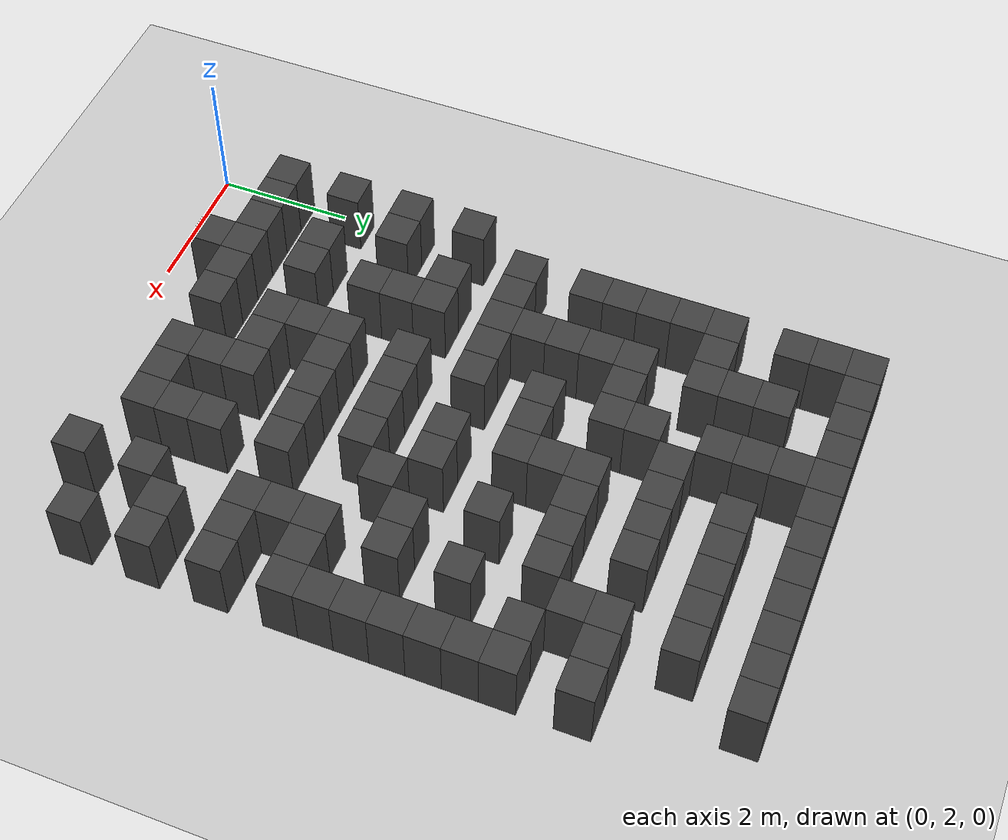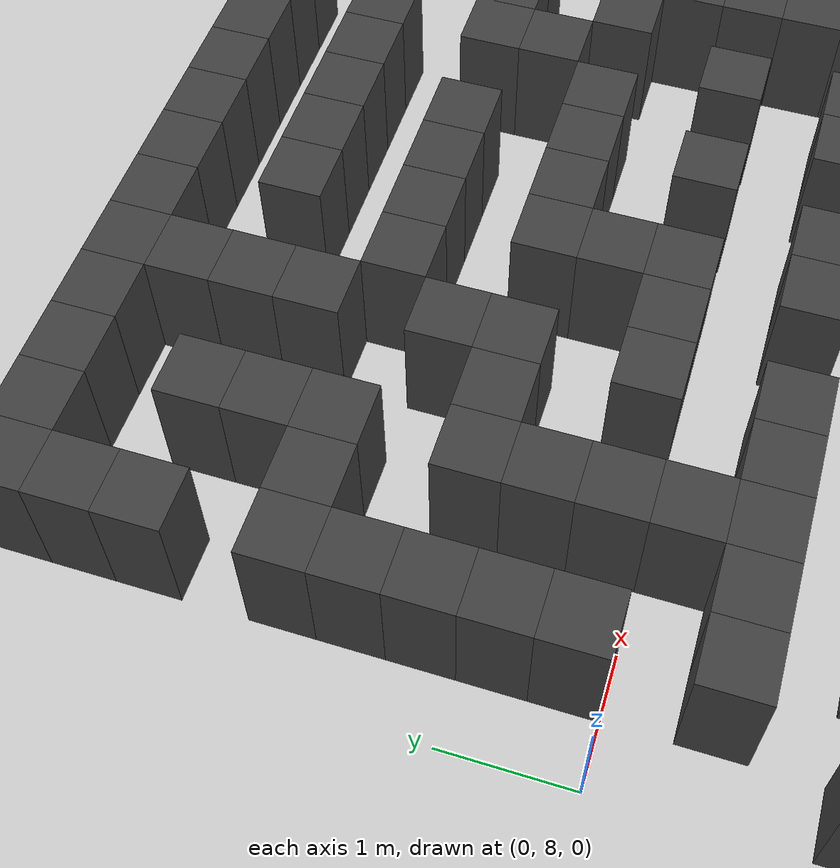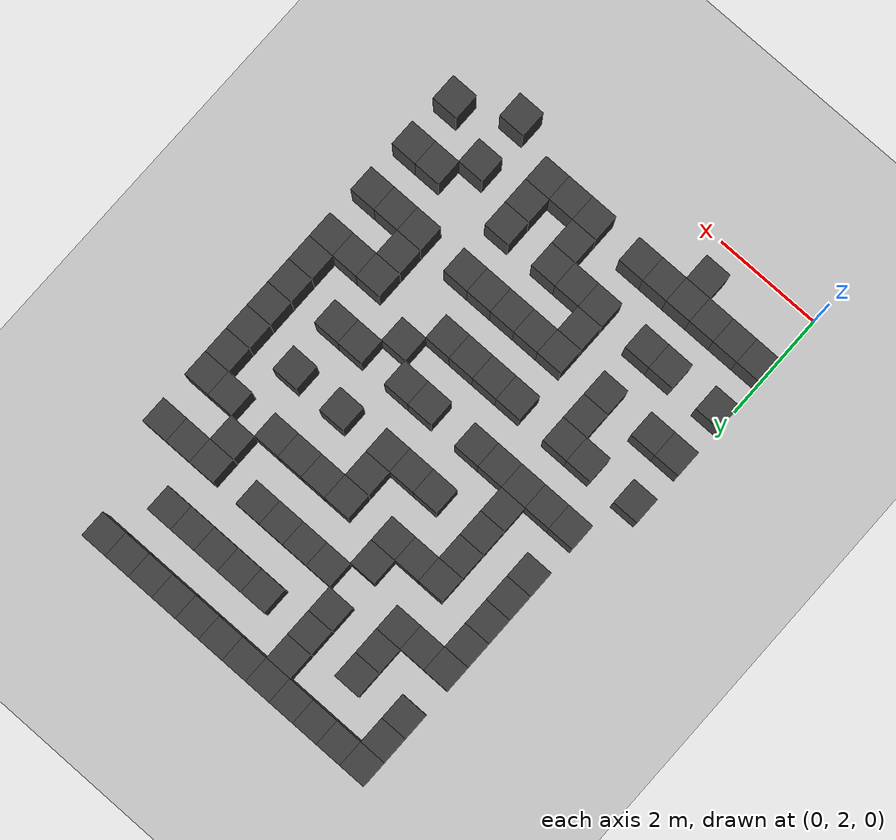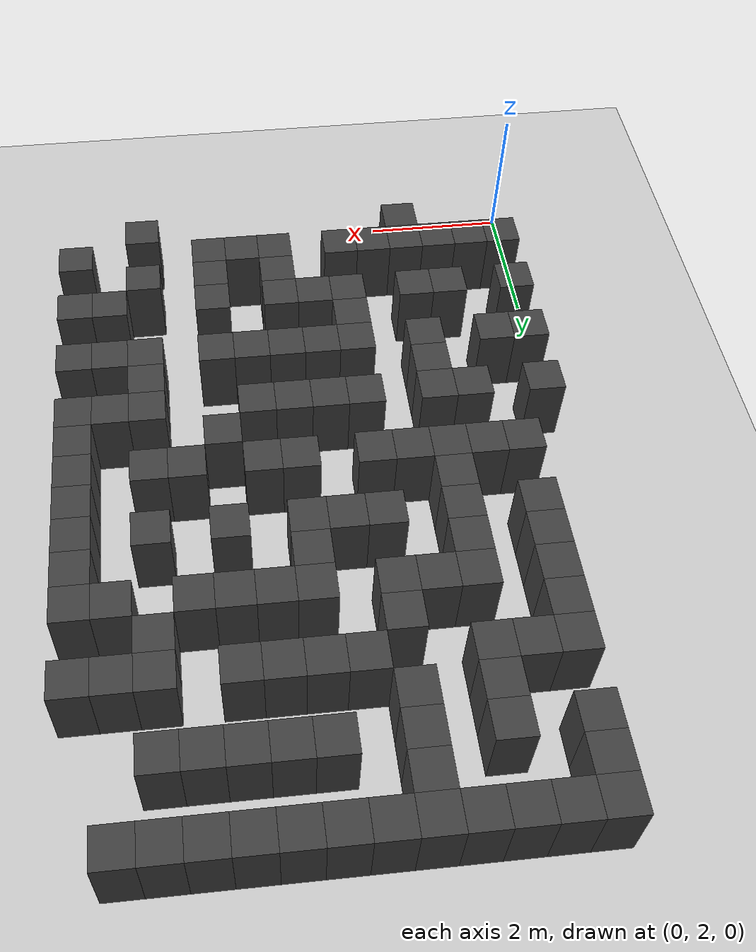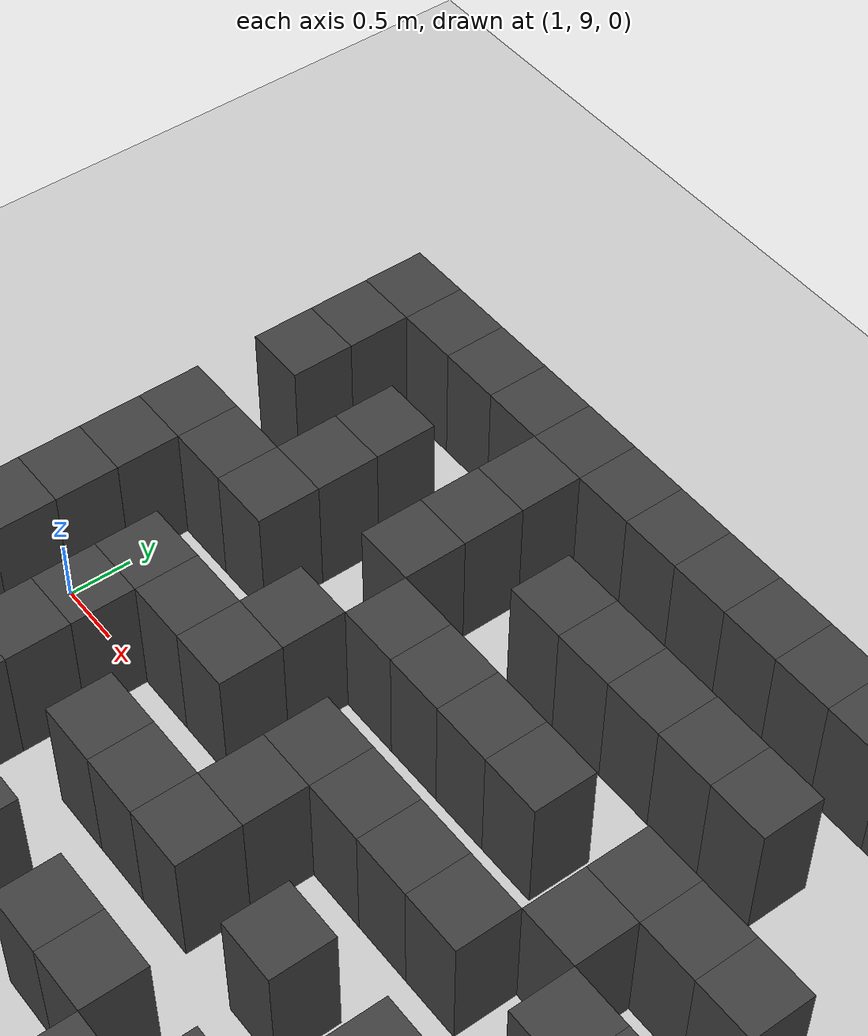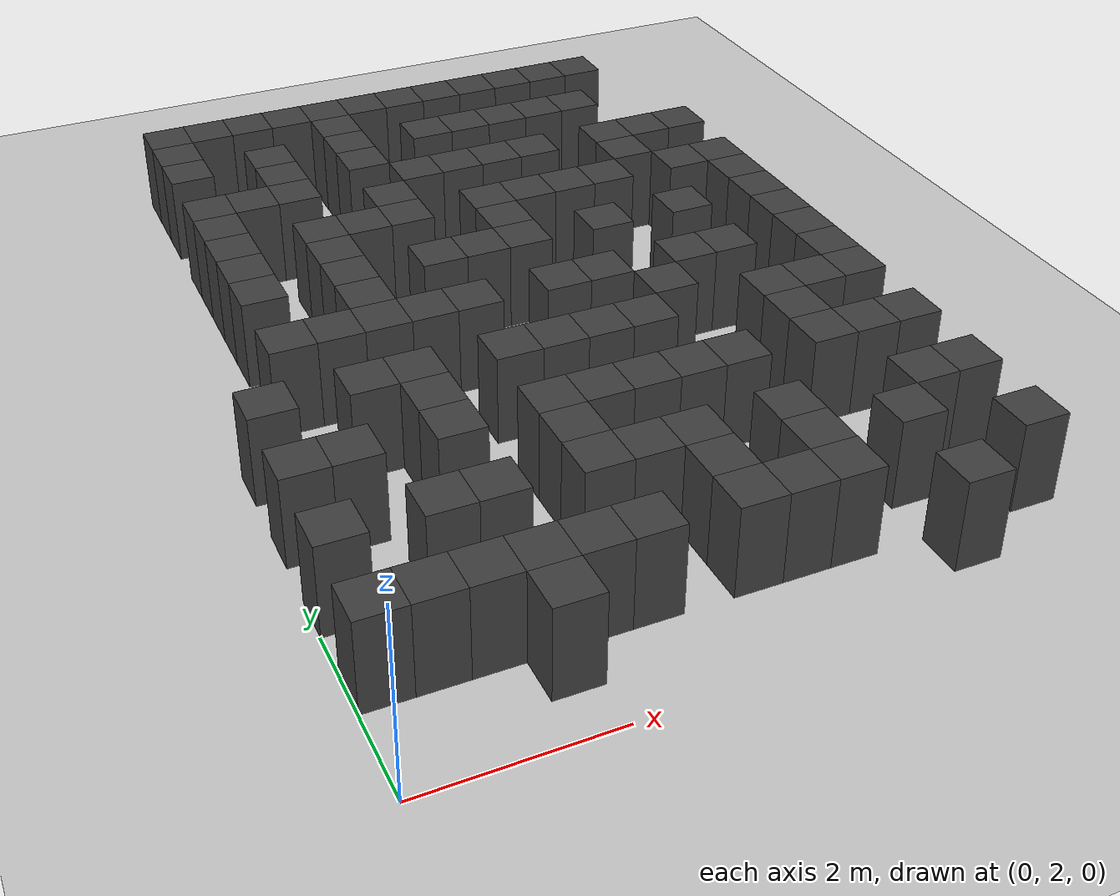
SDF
<sdf version="1.7">
 <world name="map_15168">
  <model name="ground_plane">
   <static>true</static>
   <link name="link">
    <collision name="collision">
     <geometry><plane><normal>0 0 1</normal><size>200 200</size></plane></geometry>
    </collision>
    <visual name="visual">
     <geometry><plane><normal>0 0 1</normal><size>200 200</size></plane></geometry>
     <material><ambient>0.8 0.8 0.8 1</ambient><diffuse>0.8 0.8 0.8 1</diffuse></material>
    </visual>
   </link>
  </model>
  <model name="maze_environment">
   <static>true</static>
   <link name="wall_26">
    <pose>0.750 12.250 0.500 0 0 0</pose>
    <collision name="col"><geometry><box><size>0.5 0.5 1.0</size></box></geometry></collision>
    <visual name="vis">
     <geometry><box><size>0.5 0.5 1.0</size></box></geometry>
     <material><ambient>0.15 0.15 0.15 1</ambient><diffuse>0.25 0.25 0.25 1</diffuse></material>
    </visual>
   </link>
   <link name="wall_27">
    <pose>1.250 12.250 0.500 0 0 0</pose>
    <collision name="col"><geometry><box><size>0.5 0.5 1.0</size></box></geometry></collision>
    <visual name="vis">
     <geometry><box><size>0.5 0.5 1.0</size></box></geometry>
     <material><ambient>0.15 0.15 0.15 1</ambient><diffuse>0.25 0.25 0.25 1</diffuse></material>
    </visual>
   </link>
   <link name="wall_28">
    <pose>1.750 12.250 0.500 0 0 0</pose>
    <collision name="col"><geometry><box><size>0.5 0.5 1.0</size></box></geometry></collision>
    <visual name="vis">
     <geometry><box><size>0.5 0.5 1.0</size></box></geometry>
     <material><ambient>0.15 0.15 0.15 1</ambient><diffuse>0.25 0.25 0.25 1</diffuse></material>
    </visual>
   </link>
   <link name="wall_29">
    <pose>2.250 12.250 0.500 0 0 0</pose>
    <collision name="col"><geometry><box><size>0.5 0.5 1.0</size></box></geometry></collision>
    <visual name="vis">
     <geometry><box><size>0.5 0.5 1.0</size></box></geometry>
     <material><ambient>0.15 0.15 0.15 1</ambient><diffuse>0.25 0.25 0.25 1</diffuse></material>
    </visual>
   </link>
   <link name="wall_30">
    <pose>2.750 12.250 0.500 0 0 0</pose>
    <collision name="col"><geometry><box><size>0.5 0.5 1.0</size></box></geometry></collision>
    <visual name="vis">
     <geometry><box><size>0.5 0.5 1.0</size></box></geometry>
     <material><ambient>0.15 0.15 0.15 1</ambient><diffuse>0.25 0.25 0.25 1</diffuse></material>
    </visual>
   </link>
   <link name="wall_31">
    <pose>3.250 12.250 0.500 0 0 0</pose>
    <collision name="col"><geometry><box><size>0.5 0.5 1.0</size></box></geometry></collision>
    <visual name="vis">
     <geometry><box><size>0.5 0.5 1.0</size></box></geometry>
     <material><ambient>0.15 0.15 0.15 1</ambient><diffuse>0.25 0.25 0.25 1</diffuse></material>
    </visual>
   </link>
   <link name="wall_32">
    <pose>3.750 12.250 0.500 0 0 0</pose>
    <collision name="col"><geometry><box><size>0.5 0.5 1.0</size></box></geometry></collision>
    <visual name="vis">
     <geometry><box><size>0.5 0.5 1.0</size></box></geometry>
     <material><ambient>0.15 0.15 0.15 1</ambient><diffuse>0.25 0.25 0.25 1</diffuse></material>
    </visual>
   </link>
   <link name="wall_33">
    <pose>4.250 12.250 0.500 0 0 0</pose>
    <collision name="col"><geometry><box><size>0.5 0.5 1.0</size></box></geometry></collision>
    <visual name="vis">
     <geometry><box><size>0.5 0.5 1.0</size></box></geometry>
     <material><ambient>0.15 0.15 0.15 1</ambient><diffuse>0.25 0.25 0.25 1</diffuse></material>
    </visual>
   </link>
   <link name="wall_34">
    <pose>4.750 12.250 0.500 0 0 0</pose>
    <collision name="col"><geometry><box><size>0.5 0.5 1.0</size></box></geometry></collision>
    <visual name="vis">
     <geometry><box><size>0.5 0.5 1.0</size></box></geometry>
     <material><ambient>0.15 0.15 0.15 1</ambient><diffuse>0.25 0.25 0.25 1</diffuse></material>
    </visual>
   </link>
   <link name="wall_35">
    <pose>5.250 12.250 0.500 0 0 0</pose>
    <collision name="col"><geometry><box><size>0.5 0.5 1.0</size></box></geometry></collision>
    <visual name="vis">
     <geometry><box><size>0.5 0.5 1.0</size></box></geometry>
     <material><ambient>0.15 0.15 0.15 1</ambient><diffuse>0.25 0.25 0.25 1</diffuse></material>
    </visual>
   </link>
   <link name="wall_36">
    <pose>5.750 12.250 0.500 0 0 0</pose>
    <collision name="col"><geometry><box><size>0.5 0.5 1.0</size></box></geometry></collision>
    <visual name="vis">
     <geometry><box><size>0.5 0.5 1.0</size></box></geometry>
     <material><ambient>0.15 0.15 0.15 1</ambient><diffuse>0.25 0.25 0.25 1</diffuse></material>
    </visual>
   </link>
   <link name="wall_37">
    <pose>6.250 12.250 0.500 0 0 0</pose>
    <collision name="col"><geometry><box><size>0.5 0.5 1.0</size></box></geometry></collision>
    <visual name="vis">
     <geometry><box><size>0.5 0.5 1.0</size></box></geometry>
     <material><ambient>0.15 0.15 0.15 1</ambient><diffuse>0.25 0.25 0.25 1</diffuse></material>
    </visual>
   </link>
   <link name="wall_54">
    <pose>0.750 11.750 0.500 0 0 0</pose>
    <collision name="col"><geometry><box><size>0.5 0.5 1.0</size></box></geometry></collision>
    <visual name="vis">
     <geometry><box><size>0.5 0.5 1.0</size></box></geometry>
     <material><ambient>0.15 0.15 0.15 1</ambient><diffuse>0.25 0.25 0.25 1</diffuse></material>
    </visual>
   </link>
   <link name="wall_55">
    <pose>2.750 11.750 0.500 0 0 0</pose>
    <collision name="col"><geometry><box><size>0.5 0.5 1.0</size></box></geometry></collision>
    <visual name="vis">
     <geometry><box><size>0.5 0.5 1.0</size></box></geometry>
     <material><ambient>0.15 0.15 0.15 1</ambient><diffuse>0.25 0.25 0.25 1</diffuse></material>
    </visual>
   </link>
   <link name="wall_75">
    <pose>0.750 11.250 0.500 0 0 0</pose>
    <collision name="col"><geometry><box><size>0.5 0.5 1.0</size></box></geometry></collision>
    <visual name="vis">
     <geometry><box><size>0.5 0.5 1.0</size></box></geometry>
     <material><ambient>0.15 0.15 0.15 1</ambient><diffuse>0.25 0.25 0.25 1</diffuse></material>
    </visual>
   </link>
   <link name="wall_76">
    <pose>1.750 11.250 0.500 0 0 0</pose>
    <collision name="col"><geometry><box><size>0.5 0.5 1.0</size></box></geometry></collision>
    <visual name="vis">
     <geometry><box><size>0.5 0.5 1.0</size></box></geometry>
     <material><ambient>0.15 0.15 0.15 1</ambient><diffuse>0.25 0.25 0.25 1</diffuse></material>
    </visual>
   </link>
   <link name="wall_77">
    <pose>2.750 11.250 0.500 0 0 0</pose>
    <collision name="col"><geometry><box><size>0.5 0.5 1.0</size></box></geometry></collision>
    <visual name="vis">
     <geometry><box><size>0.5 0.5 1.0</size></box></geometry>
     <material><ambient>0.15 0.15 0.15 1</ambient><diffuse>0.25 0.25 0.25 1</diffuse></material>
    </visual>
   </link>
   <link name="wall_78">
    <pose>3.750 11.250 0.500 0 0 0</pose>
    <collision name="col"><geometry><box><size>0.5 0.5 1.0</size></box></geometry></collision>
    <visual name="vis">
     <geometry><box><size>0.5 0.5 1.0</size></box></geometry>
     <material><ambient>0.15 0.15 0.15 1</ambient><diffuse>0.25 0.25 0.25 1</diffuse></material>
    </visual>
   </link>
   <link name="wall_79">
    <pose>4.250 11.250 0.500 0 0 0</pose>
    <collision name="col"><geometry><box><size>0.5 0.5 1.0</size></box></geometry></collision>
    <visual name="vis">
     <geometry><box><size>0.5 0.5 1.0</size></box></geometry>
     <material><ambient>0.15 0.15 0.15 1</ambient><diffuse>0.25 0.25 0.25 1</diffuse></material>
    </visual>
   </link>
   <link name="wall_80">
    <pose>4.750 11.250 0.500 0 0 0</pose>
    <collision name="col"><geometry><box><size>0.5 0.5 1.0</size></box></geometry></collision>
    <visual name="vis">
     <geometry><box><size>0.5 0.5 1.0</size></box></geometry>
     <material><ambient>0.15 0.15 0.15 1</ambient><diffuse>0.25 0.25 0.25 1</diffuse></material>
    </visual>
   </link>
   <link name="wall_81">
    <pose>5.250 11.250 0.500 0 0 0</pose>
    <collision name="col"><geometry><box><size>0.5 0.5 1.0</size></box></geometry></collision>
    <visual name="vis">
     <geometry><box><size>0.5 0.5 1.0</size></box></geometry>
     <material><ambient>0.15 0.15 0.15 1</ambient><diffuse>0.25 0.25 0.25 1</diffuse></material>
    </visual>
   </link>
   <link name="wall_82">
    <pose>5.750 11.250 0.500 0 0 0</pose>
    <collision name="col"><geometry><box><size>0.5 0.5 1.0</size></box></geometry></collision>
    <visual name="vis">
     <geometry><box><size>0.5 0.5 1.0</size></box></geometry>
     <material><ambient>0.15 0.15 0.15 1</ambient><diffuse>0.25 0.25 0.25 1</diffuse></material>
    </visual>
   </link>
   <link name="wall_97">
    <pose>1.750 10.750 0.500 0 0 0</pose>
    <collision name="col"><geometry><box><size>0.5 0.5 1.0</size></box></geometry></collision>
    <visual name="vis">
     <geometry><box><size>0.5 0.5 1.0</size></box></geometry>
     <material><ambient>0.15 0.15 0.15 1</ambient><diffuse>0.25 0.25 0.25 1</diffuse></material>
    </visual>
   </link>
   <link name="wall_98">
    <pose>2.750 10.750 0.500 0 0 0</pose>
    <collision name="col"><geometry><box><size>0.5 0.5 1.0</size></box></geometry></collision>
    <visual name="vis">
     <geometry><box><size>0.5 0.5 1.0</size></box></geometry>
     <material><ambient>0.15 0.15 0.15 1</ambient><diffuse>0.25 0.25 0.25 1</diffuse></material>
    </visual>
   </link>
   <link name="wall_123">
    <pose>0.750 10.250 0.500 0 0 0</pose>
    <collision name="col"><geometry><box><size>0.5 0.5 1.0</size></box></geometry></collision>
    <visual name="vis">
     <geometry><box><size>0.5 0.5 1.0</size></box></geometry>
     <material><ambient>0.15 0.15 0.15 1</ambient><diffuse>0.25 0.25 0.25 1</diffuse></material>
    </visual>
   </link>
   <link name="wall_124">
    <pose>1.250 10.250 0.500 0 0 0</pose>
    <collision name="col"><geometry><box><size>0.5 0.5 1.0</size></box></geometry></collision>
    <visual name="vis">
     <geometry><box><size>0.5 0.5 1.0</size></box></geometry>
     <material><ambient>0.15 0.15 0.15 1</ambient><diffuse>0.25 0.25 0.25 1</diffuse></material>
    </visual>
   </link>
   <link name="wall_125">
    <pose>1.750 10.250 0.500 0 0 0</pose>
    <collision name="col"><geometry><box><size>0.5 0.5 1.0</size></box></geometry></collision>
    <visual name="vis">
     <geometry><box><size>0.5 0.5 1.0</size></box></geometry>
     <material><ambient>0.15 0.15 0.15 1</ambient><diffuse>0.25 0.25 0.25 1</diffuse></material>
    </visual>
   </link>
   <link name="wall_126">
    <pose>3.250 10.250 0.500 0 0 0</pose>
    <collision name="col"><geometry><box><size>0.5 0.5 1.0</size></box></geometry></collision>
    <visual name="vis">
     <geometry><box><size>0.5 0.5 1.0</size></box></geometry>
     <material><ambient>0.15 0.15 0.15 1</ambient><diffuse>0.25 0.25 0.25 1</diffuse></material>
    </visual>
   </link>
   <link name="wall_127">
    <pose>3.750 10.250 0.500 0 0 0</pose>
    <collision name="col"><geometry><box><size>0.5 0.5 1.0</size></box></geometry></collision>
    <visual name="vis">
     <geometry><box><size>0.5 0.5 1.0</size></box></geometry>
     <material><ambient>0.15 0.15 0.15 1</ambient><diffuse>0.25 0.25 0.25 1</diffuse></material>
    </visual>
   </link>
   <link name="wall_128">
    <pose>4.250 10.250 0.500 0 0 0</pose>
    <collision name="col"><geometry><box><size>0.5 0.5 1.0</size></box></geometry></collision>
    <visual name="vis">
     <geometry><box><size>0.5 0.5 1.0</size></box></geometry>
     <material><ambient>0.15 0.15 0.15 1</ambient><diffuse>0.25 0.25 0.25 1</diffuse></material>
    </visual>
   </link>
   <link name="wall_129">
    <pose>4.750 10.250 0.500 0 0 0</pose>
    <collision name="col"><geometry><box><size>0.5 0.5 1.0</size></box></geometry></collision>
    <visual name="vis">
     <geometry><box><size>0.5 0.5 1.0</size></box></geometry>
     <material><ambient>0.15 0.15 0.15 1</ambient><diffuse>0.25 0.25 0.25 1</diffuse></material>
    </visual>
   </link>
   <link name="wall_130">
    <pose>5.750 10.250 0.500 0 0 0</pose>
    <collision name="col"><geometry><box><size>0.5 0.5 1.0</size></box></geometry></collision>
    <visual name="vis">
     <geometry><box><size>0.5 0.5 1.0</size></box></geometry>
     <material><ambient>0.15 0.15 0.15 1</ambient><diffuse>0.25 0.25 0.25 1</diffuse></material>
    </visual>
   </link>
   <link name="wall_131">
    <pose>6.250 10.250 0.500 0 0 0</pose>
    <collision name="col"><geometry><box><size>0.5 0.5 1.0</size></box></geometry></collision>
    <visual name="vis">
     <geometry><box><size>0.5 0.5 1.0</size></box></geometry>
     <material><ambient>0.15 0.15 0.15 1</ambient><diffuse>0.25 0.25 0.25 1</diffuse></material>
    </visual>
   </link>
   <link name="wall_132">
    <pose>6.750 10.250 0.500 0 0 0</pose>
    <collision name="col"><geometry><box><size>0.5 0.5 1.0</size></box></geometry></collision>
    <visual name="vis">
     <geometry><box><size>0.5 0.5 1.0</size></box></geometry>
     <material><ambient>0.15 0.15 0.15 1</ambient><diffuse>0.25 0.25 0.25 1</diffuse></material>
    </visual>
   </link>
   <link name="wall_145">
    <pose>0.750 9.750 0.500 0 0 0</pose>
    <collision name="col"><geometry><box><size>0.5 0.5 1.0</size></box></geometry></collision>
    <visual name="vis">
     <geometry><box><size>0.5 0.5 1.0</size></box></geometry>
     <material><ambient>0.15 0.15 0.15 1</ambient><diffuse>0.25 0.25 0.25 1</diffuse></material>
    </visual>
   </link>
   <link name="wall_146">
    <pose>2.750 9.750 0.500 0 0 0</pose>
    <collision name="col"><geometry><box><size>0.5 0.5 1.0</size></box></geometry></collision>
    <visual name="vis">
     <geometry><box><size>0.5 0.5 1.0</size></box></geometry>
     <material><ambient>0.15 0.15 0.15 1</ambient><diffuse>0.25 0.25 0.25 1</diffuse></material>
    </visual>
   </link>
   <link name="wall_147">
    <pose>5.750 9.750 0.500 0 0 0</pose>
    <collision name="col"><geometry><box><size>0.5 0.5 1.0</size></box></geometry></collision>
    <visual name="vis">
     <geometry><box><size>0.5 0.5 1.0</size></box></geometry>
     <material><ambient>0.15 0.15 0.15 1</ambient><diffuse>0.25 0.25 0.25 1</diffuse></material>
    </visual>
   </link>
   <link name="wall_171">
    <pose>0.750 9.250 0.500 0 0 0</pose>
    <collision name="col"><geometry><box><size>0.5 0.5 1.0</size></box></geometry></collision>
    <visual name="vis">
     <geometry><box><size>0.5 0.5 1.0</size></box></geometry>
     <material><ambient>0.15 0.15 0.15 1</ambient><diffuse>0.25 0.25 0.25 1</diffuse></material>
    </visual>
   </link>
   <link name="wall_172">
    <pose>1.750 9.250 0.500 0 0 0</pose>
    <collision name="col"><geometry><box><size>0.5 0.5 1.0</size></box></geometry></collision>
    <visual name="vis">
     <geometry><box><size>0.5 0.5 1.0</size></box></geometry>
     <material><ambient>0.15 0.15 0.15 1</ambient><diffuse>0.25 0.25 0.25 1</diffuse></material>
    </visual>
   </link>
   <link name="wall_173">
    <pose>2.250 9.250 0.500 0 0 0</pose>
    <collision name="col"><geometry><box><size>0.5 0.5 1.0</size></box></geometry></collision>
    <visual name="vis">
     <geometry><box><size>0.5 0.5 1.0</size></box></geometry>
     <material><ambient>0.15 0.15 0.15 1</ambient><diffuse>0.25 0.25 0.25 1</diffuse></material>
    </visual>
   </link>
   <link name="wall_174">
    <pose>2.750 9.250 0.500 0 0 0</pose>
    <collision name="col"><geometry><box><size>0.5 0.5 1.0</size></box></geometry></collision>
    <visual name="vis">
     <geometry><box><size>0.5 0.5 1.0</size></box></geometry>
     <material><ambient>0.15 0.15 0.15 1</ambient><diffuse>0.25 0.25 0.25 1</diffuse></material>
    </visual>
   </link>
   <link name="wall_175">
    <pose>3.750 9.250 0.500 0 0 0</pose>
    <collision name="col"><geometry><box><size>0.5 0.5 1.0</size></box></geometry></collision>
    <visual name="vis">
     <geometry><box><size>0.5 0.5 1.0</size></box></geometry>
     <material><ambient>0.15 0.15 0.15 1</ambient><diffuse>0.25 0.25 0.25 1</diffuse></material>
    </visual>
   </link>
   <link name="wall_176">
    <pose>4.250 9.250 0.500 0 0 0</pose>
    <collision name="col"><geometry><box><size>0.5 0.5 1.0</size></box></geometry></collision>
    <visual name="vis">
     <geometry><box><size>0.5 0.5 1.0</size></box></geometry>
     <material><ambient>0.15 0.15 0.15 1</ambient><diffuse>0.25 0.25 0.25 1</diffuse></material>
    </visual>
   </link>
   <link name="wall_177">
    <pose>4.750 9.250 0.500 0 0 0</pose>
    <collision name="col"><geometry><box><size>0.5 0.5 1.0</size></box></geometry></collision>
    <visual name="vis">
     <geometry><box><size>0.5 0.5 1.0</size></box></geometry>
     <material><ambient>0.15 0.15 0.15 1</ambient><diffuse>0.25 0.25 0.25 1</diffuse></material>
    </visual>
   </link>
   <link name="wall_178">
    <pose>5.250 9.250 0.500 0 0 0</pose>
    <collision name="col"><geometry><box><size>0.5 0.5 1.0</size></box></geometry></collision>
    <visual name="vis">
     <geometry><box><size>0.5 0.5 1.0</size></box></geometry>
     <material><ambient>0.15 0.15 0.15 1</ambient><diffuse>0.25 0.25 0.25 1</diffuse></material>
    </visual>
   </link>
   <link name="wall_179">
    <pose>6.250 9.250 0.500 0 0 0</pose>
    <collision name="col"><geometry><box><size>0.5 0.5 1.0</size></box></geometry></collision>
    <visual name="vis">
     <geometry><box><size>0.5 0.5 1.0</size></box></geometry>
     <material><ambient>0.15 0.15 0.15 1</ambient><diffuse>0.25 0.25 0.25 1</diffuse></material>
    </visual>
   </link>
   <link name="wall_180">
    <pose>6.750 9.250 0.500 0 0 0</pose>
    <collision name="col"><geometry><box><size>0.5 0.5 1.0</size></box></geometry></collision>
    <visual name="vis">
     <geometry><box><size>0.5 0.5 1.0</size></box></geometry>
     <material><ambient>0.15 0.15 0.15 1</ambient><diffuse>0.25 0.25 0.25 1</diffuse></material>
    </visual>
   </link>
   <link name="wall_193">
    <pose>0.750 8.750 0.500 0 0 0</pose>
    <collision name="col"><geometry><box><size>0.5 0.5 1.0</size></box></geometry></collision>
    <visual name="vis">
     <geometry><box><size>0.5 0.5 1.0</size></box></geometry>
     <material><ambient>0.15 0.15 0.15 1</ambient><diffuse>0.25 0.25 0.25 1</diffuse></material>
    </visual>
   </link>
   <link name="wall_194">
    <pose>1.750 8.750 0.500 0 0 0</pose>
    <collision name="col"><geometry><box><size>0.5 0.5 1.0</size></box></geometry></collision>
    <visual name="vis">
     <geometry><box><size>0.5 0.5 1.0</size></box></geometry>
     <material><ambient>0.15 0.15 0.15 1</ambient><diffuse>0.25 0.25 0.25 1</diffuse></material>
    </visual>
   </link>
   <link name="wall_195">
    <pose>3.750 8.750 0.500 0 0 0</pose>
    <collision name="col"><geometry><box><size>0.5 0.5 1.0</size></box></geometry></collision>
    <visual name="vis">
     <geometry><box><size>0.5 0.5 1.0</size></box></geometry>
     <material><ambient>0.15 0.15 0.15 1</ambient><diffuse>0.25 0.25 0.25 1</diffuse></material>
    </visual>
   </link>
   <link name="wall_196">
    <pose>6.750 8.750 0.500 0 0 0</pose>
    <collision name="col"><geometry><box><size>0.5 0.5 1.0</size></box></geometry></collision>
    <visual name="vis">
     <geometry><box><size>0.5 0.5 1.0</size></box></geometry>
     <material><ambient>0.15 0.15 0.15 1</ambient><diffuse>0.25 0.25 0.25 1</diffuse></material>
    </visual>
   </link>
   <link name="wall_217">
    <pose>0.750 8.250 0.500 0 0 0</pose>
    <collision name="col"><geometry><box><size>0.5 0.5 1.0</size></box></geometry></collision>
    <visual name="vis">
     <geometry><box><size>0.5 0.5 1.0</size></box></geometry>
     <material><ambient>0.15 0.15 0.15 1</ambient><diffuse>0.25 0.25 0.25 1</diffuse></material>
    </visual>
   </link>
   <link name="wall_218">
    <pose>1.750 8.250 0.500 0 0 0</pose>
    <collision name="col"><geometry><box><size>0.5 0.5 1.0</size></box></geometry></collision>
    <visual name="vis">
     <geometry><box><size>0.5 0.5 1.0</size></box></geometry>
     <material><ambient>0.15 0.15 0.15 1</ambient><diffuse>0.25 0.25 0.25 1</diffuse></material>
    </visual>
   </link>
   <link name="wall_219">
    <pose>2.750 8.250 0.500 0 0 0</pose>
    <collision name="col"><geometry><box><size>0.5 0.5 1.0</size></box></geometry></collision>
    <visual name="vis">
     <geometry><box><size>0.5 0.5 1.0</size></box></geometry>
     <material><ambient>0.15 0.15 0.15 1</ambient><diffuse>0.25 0.25 0.25 1</diffuse></material>
    </visual>
   </link>
   <link name="wall_220">
    <pose>3.250 8.250 0.500 0 0 0</pose>
    <collision name="col"><geometry><box><size>0.5 0.5 1.0</size></box></geometry></collision>
    <visual name="vis">
     <geometry><box><size>0.5 0.5 1.0</size></box></geometry>
     <material><ambient>0.15 0.15 0.15 1</ambient><diffuse>0.25 0.25 0.25 1</diffuse></material>
    </visual>
   </link>
   <link name="wall_221">
    <pose>3.750 8.250 0.500 0 0 0</pose>
    <collision name="col"><geometry><box><size>0.5 0.5 1.0</size></box></geometry></collision>
    <visual name="vis">
     <geometry><box><size>0.5 0.5 1.0</size></box></geometry>
     <material><ambient>0.15 0.15 0.15 1</ambient><diffuse>0.25 0.25 0.25 1</diffuse></material>
    </visual>
   </link>
   <link name="wall_222">
    <pose>4.750 8.250 0.500 0 0 0</pose>
    <collision name="col"><geometry><box><size>0.5 0.5 1.0</size></box></geometry></collision>
    <visual name="vis">
     <geometry><box><size>0.5 0.5 1.0</size></box></geometry>
     <material><ambient>0.15 0.15 0.15 1</ambient><diffuse>0.25 0.25 0.25 1</diffuse></material>
    </visual>
   </link>
   <link name="wall_223">
    <pose>5.750 8.250 0.500 0 0 0</pose>
    <collision name="col"><geometry><box><size>0.5 0.5 1.0</size></box></geometry></collision>
    <visual name="vis">
     <geometry><box><size>0.5 0.5 1.0</size></box></geometry>
     <material><ambient>0.15 0.15 0.15 1</ambient><diffuse>0.25 0.25 0.25 1</diffuse></material>
    </visual>
   </link>
   <link name="wall_224">
    <pose>6.750 8.250 0.500 0 0 0</pose>
    <collision name="col"><geometry><box><size>0.5 0.5 1.0</size></box></geometry></collision>
    <visual name="vis">
     <geometry><box><size>0.5 0.5 1.0</size></box></geometry>
     <material><ambient>0.15 0.15 0.15 1</ambient><diffuse>0.25 0.25 0.25 1</diffuse></material>
    </visual>
   </link>
   <link name="wall_239">
    <pose>1.750 7.750 0.500 0 0 0</pose>
    <collision name="col"><geometry><box><size>0.5 0.5 1.0</size></box></geometry></collision>
    <visual name="vis">
     <geometry><box><size>0.5 0.5 1.0</size></box></geometry>
     <material><ambient>0.15 0.15 0.15 1</ambient><diffuse>0.25 0.25 0.25 1</diffuse></material>
    </visual>
   </link>
   <link name="wall_240">
    <pose>6.750 7.750 0.500 0 0 0</pose>
    <collision name="col"><geometry><box><size>0.5 0.5 1.0</size></box></geometry></collision>
    <visual name="vis">
     <geometry><box><size>0.5 0.5 1.0</size></box></geometry>
     <material><ambient>0.15 0.15 0.15 1</ambient><diffuse>0.25 0.25 0.25 1</diffuse></material>
    </visual>
   </link>
   <link name="wall_261">
    <pose>0.750 7.250 0.500 0 0 0</pose>
    <collision name="col"><geometry><box><size>0.5 0.5 1.0</size></box></geometry></collision>
    <visual name="vis">
     <geometry><box><size>0.5 0.5 1.0</size></box></geometry>
     <material><ambient>0.15 0.15 0.15 1</ambient><diffuse>0.25 0.25 0.25 1</diffuse></material>
    </visual>
   </link>
   <link name="wall_262">
    <pose>1.250 7.250 0.500 0 0 0</pose>
    <collision name="col"><geometry><box><size>0.5 0.5 1.0</size></box></geometry></collision>
    <visual name="vis">
     <geometry><box><size>0.5 0.5 1.0</size></box></geometry>
     <material><ambient>0.15 0.15 0.15 1</ambient><diffuse>0.25 0.25 0.25 1</diffuse></material>
    </visual>
   </link>
   <link name="wall_263">
    <pose>1.750 7.250 0.500 0 0 0</pose>
    <collision name="col"><geometry><box><size>0.5 0.5 1.0</size></box></geometry></collision>
    <visual name="vis">
     <geometry><box><size>0.5 0.5 1.0</size></box></geometry>
     <material><ambient>0.15 0.15 0.15 1</ambient><diffuse>0.25 0.25 0.25 1</diffuse></material>
    </visual>
   </link>
   <link name="wall_264">
    <pose>2.250 7.250 0.500 0 0 0</pose>
    <collision name="col"><geometry><box><size>0.5 0.5 1.0</size></box></geometry></collision>
    <visual name="vis">
     <geometry><box><size>0.5 0.5 1.0</size></box></geometry>
     <material><ambient>0.15 0.15 0.15 1</ambient><diffuse>0.25 0.25 0.25 1</diffuse></material>
    </visual>
   </link>
   <link name="wall_265">
    <pose>2.750 7.250 0.500 0 0 0</pose>
    <collision name="col"><geometry><box><size>0.5 0.5 1.0</size></box></geometry></collision>
    <visual name="vis">
     <geometry><box><size>0.5 0.5 1.0</size></box></geometry>
     <material><ambient>0.15 0.15 0.15 1</ambient><diffuse>0.25 0.25 0.25 1</diffuse></material>
    </visual>
   </link>
   <link name="wall_266">
    <pose>3.750 7.250 0.500 0 0 0</pose>
    <collision name="col"><geometry><box><size>0.5 0.5 1.0</size></box></geometry></collision>
    <visual name="vis">
     <geometry><box><size>0.5 0.5 1.0</size></box></geometry>
     <material><ambient>0.15 0.15 0.15 1</ambient><diffuse>0.25 0.25 0.25 1</diffuse></material>
    </visual>
   </link>
   <link name="wall_267">
    <pose>4.250 7.250 0.500 0 0 0</pose>
    <collision name="col"><geometry><box><size>0.5 0.5 1.0</size></box></geometry></collision>
    <visual name="vis">
     <geometry><box><size>0.5 0.5 1.0</size></box></geometry>
     <material><ambient>0.15 0.15 0.15 1</ambient><diffuse>0.25 0.25 0.25 1</diffuse></material>
    </visual>
   </link>
   <link name="wall_268">
    <pose>5.250 7.250 0.500 0 0 0</pose>
    <collision name="col"><geometry><box><size>0.5 0.5 1.0</size></box></geometry></collision>
    <visual name="vis">
     <geometry><box><size>0.5 0.5 1.0</size></box></geometry>
     <material><ambient>0.15 0.15 0.15 1</ambient><diffuse>0.25 0.25 0.25 1</diffuse></material>
    </visual>
   </link>
   <link name="wall_269">
    <pose>5.750 7.250 0.500 0 0 0</pose>
    <collision name="col"><geometry><box><size>0.5 0.5 1.0</size></box></geometry></collision>
    <visual name="vis">
     <geometry><box><size>0.5 0.5 1.0</size></box></geometry>
     <material><ambient>0.15 0.15 0.15 1</ambient><diffuse>0.25 0.25 0.25 1</diffuse></material>
    </visual>
   </link>
   <link name="wall_270">
    <pose>6.750 7.250 0.500 0 0 0</pose>
    <collision name="col"><geometry><box><size>0.5 0.5 1.0</size></box></geometry></collision>
    <visual name="vis">
     <geometry><box><size>0.5 0.5 1.0</size></box></geometry>
     <material><ambient>0.15 0.15 0.15 1</ambient><diffuse>0.25 0.25 0.25 1</diffuse></material>
    </visual>
   </link>
   <link name="wall_283">
    <pose>4.750 6.750 0.500 0 0 0</pose>
    <collision name="col"><geometry><box><size>0.5 0.5 1.0</size></box></geometry></collision>
    <visual name="vis">
     <geometry><box><size>0.5 0.5 1.0</size></box></geometry>
     <material><ambient>0.15 0.15 0.15 1</ambient><diffuse>0.25 0.25 0.25 1</diffuse></material>
    </visual>
   </link>
   <link name="wall_284">
    <pose>6.750 6.750 0.500 0 0 0</pose>
    <collision name="col"><geometry><box><size>0.5 0.5 1.0</size></box></geometry></collision>
    <visual name="vis">
     <geometry><box><size>0.5 0.5 1.0</size></box></geometry>
     <material><ambient>0.15 0.15 0.15 1</ambient><diffuse>0.25 0.25 0.25 1</diffuse></material>
    </visual>
   </link>
   <link name="wall_305">
    <pose>0.250 6.250 0.500 0 0 0</pose>
    <collision name="col"><geometry><box><size>0.5 0.5 1.0</size></box></geometry></collision>
    <visual name="vis">
     <geometry><box><size>0.5 0.5 1.0</size></box></geometry>
     <material><ambient>0.15 0.15 0.15 1</ambient><diffuse>0.25 0.25 0.25 1</diffuse></material>
    </visual>
   </link>
   <link name="wall_306">
    <pose>1.250 6.250 0.500 0 0 0</pose>
    <collision name="col"><geometry><box><size>0.5 0.5 1.0</size></box></geometry></collision>
    <visual name="vis">
     <geometry><box><size>0.5 0.5 1.0</size></box></geometry>
     <material><ambient>0.15 0.15 0.15 1</ambient><diffuse>0.25 0.25 0.25 1</diffuse></material>
    </visual>
   </link>
   <link name="wall_307">
    <pose>1.750 6.250 0.500 0 0 0</pose>
    <collision name="col"><geometry><box><size>0.5 0.5 1.0</size></box></geometry></collision>
    <visual name="vis">
     <geometry><box><size>0.5 0.5 1.0</size></box></geometry>
     <material><ambient>0.15 0.15 0.15 1</ambient><diffuse>0.25 0.25 0.25 1</diffuse></material>
    </visual>
   </link>
   <link name="wall_308">
    <pose>2.750 6.250 0.500 0 0 0</pose>
    <collision name="col"><geometry><box><size>0.5 0.5 1.0</size></box></geometry></collision>
    <visual name="vis">
     <geometry><box><size>0.5 0.5 1.0</size></box></geometry>
     <material><ambient>0.15 0.15 0.15 1</ambient><diffuse>0.25 0.25 0.25 1</diffuse></material>
    </visual>
   </link>
   <link name="wall_309">
    <pose>3.250 6.250 0.500 0 0 0</pose>
    <collision name="col"><geometry><box><size>0.5 0.5 1.0</size></box></geometry></collision>
    <visual name="vis">
     <geometry><box><size>0.5 0.5 1.0</size></box></geometry>
     <material><ambient>0.15 0.15 0.15 1</ambient><diffuse>0.25 0.25 0.25 1</diffuse></material>
    </visual>
   </link>
   <link name="wall_310">
    <pose>3.750 6.250 0.500 0 0 0</pose>
    <collision name="col"><geometry><box><size>0.5 0.5 1.0</size></box></geometry></collision>
    <visual name="vis">
     <geometry><box><size>0.5 0.5 1.0</size></box></geometry>
     <material><ambient>0.15 0.15 0.15 1</ambient><diffuse>0.25 0.25 0.25 1</diffuse></material>
    </visual>
   </link>
   <link name="wall_311">
    <pose>4.250 6.250 0.500 0 0 0</pose>
    <collision name="col"><geometry><box><size>0.5 0.5 1.0</size></box></geometry></collision>
    <visual name="vis">
     <geometry><box><size>0.5 0.5 1.0</size></box></geometry>
     <material><ambient>0.15 0.15 0.15 1</ambient><diffuse>0.25 0.25 0.25 1</diffuse></material>
    </visual>
   </link>
   <link name="wall_312">
    <pose>5.750 6.250 0.500 0 0 0</pose>
    <collision name="col"><geometry><box><size>0.5 0.5 1.0</size></box></geometry></collision>
    <visual name="vis">
     <geometry><box><size>0.5 0.5 1.0</size></box></geometry>
     <material><ambient>0.15 0.15 0.15 1</ambient><diffuse>0.25 0.25 0.25 1</diffuse></material>
    </visual>
   </link>
   <link name="wall_313">
    <pose>6.250 6.250 0.500 0 0 0</pose>
    <collision name="col"><geometry><box><size>0.5 0.5 1.0</size></box></geometry></collision>
    <visual name="vis">
     <geometry><box><size>0.5 0.5 1.0</size></box></geometry>
     <material><ambient>0.15 0.15 0.15 1</ambient><diffuse>0.25 0.25 0.25 1</diffuse></material>
    </visual>
   </link>
   <link name="wall_314">
    <pose>6.750 6.250 0.500 0 0 0</pose>
    <collision name="col"><geometry><box><size>0.5 0.5 1.0</size></box></geometry></collision>
    <visual name="vis">
     <geometry><box><size>0.5 0.5 1.0</size></box></geometry>
     <material><ambient>0.15 0.15 0.15 1</ambient><diffuse>0.25 0.25 0.25 1</diffuse></material>
    </visual>
   </link>
   <link name="wall_328">
    <pose>1.750 5.750 0.500 0 0 0</pose>
    <collision name="col"><geometry><box><size>0.5 0.5 1.0</size></box></geometry></collision>
    <visual name="vis">
     <geometry><box><size>0.5 0.5 1.0</size></box></geometry>
     <material><ambient>0.15 0.15 0.15 1</ambient><diffuse>0.25 0.25 0.25 1</diffuse></material>
    </visual>
   </link>
   <link name="wall_329">
    <pose>5.750 5.750 0.500 0 0 0</pose>
    <collision name="col"><geometry><box><size>0.5 0.5 1.0</size></box></geometry></collision>
    <visual name="vis">
     <geometry><box><size>0.5 0.5 1.0</size></box></geometry>
     <material><ambient>0.15 0.15 0.15 1</ambient><diffuse>0.25 0.25 0.25 1</diffuse></material>
    </visual>
   </link>
   <link name="wall_353">
    <pose>0.250 5.250 0.500 0 0 0</pose>
    <collision name="col"><geometry><box><size>0.5 0.5 1.0</size></box></geometry></collision>
    <visual name="vis">
     <geometry><box><size>0.5 0.5 1.0</size></box></geometry>
     <material><ambient>0.15 0.15 0.15 1</ambient><diffuse>0.25 0.25 0.25 1</diffuse></material>
    </visual>
   </link>
   <link name="wall_354">
    <pose>0.750 5.250 0.500 0 0 0</pose>
    <collision name="col"><geometry><box><size>0.5 0.5 1.0</size></box></geometry></collision>
    <visual name="vis">
     <geometry><box><size>0.5 0.5 1.0</size></box></geometry>
     <material><ambient>0.15 0.15 0.15 1</ambient><diffuse>0.25 0.25 0.25 1</diffuse></material>
    </visual>
   </link>
   <link name="wall_355">
    <pose>1.750 5.250 0.500 0 0 0</pose>
    <collision name="col"><geometry><box><size>0.5 0.5 1.0</size></box></geometry></collision>
    <visual name="vis">
     <geometry><box><size>0.5 0.5 1.0</size></box></geometry>
     <material><ambient>0.15 0.15 0.15 1</ambient><diffuse>0.25 0.25 0.25 1</diffuse></material>
    </visual>
   </link>
   <link name="wall_356">
    <pose>2.750 5.250 0.500 0 0 0</pose>
    <collision name="col"><geometry><box><size>0.5 0.5 1.0</size></box></geometry></collision>
    <visual name="vis">
     <geometry><box><size>0.5 0.5 1.0</size></box></geometry>
     <material><ambient>0.15 0.15 0.15 1</ambient><diffuse>0.25 0.25 0.25 1</diffuse></material>
    </visual>
   </link>
   <link name="wall_357">
    <pose>3.250 5.250 0.500 0 0 0</pose>
    <collision name="col"><geometry><box><size>0.5 0.5 1.0</size></box></geometry></collision>
    <visual name="vis">
     <geometry><box><size>0.5 0.5 1.0</size></box></geometry>
     <material><ambient>0.15 0.15 0.15 1</ambient><diffuse>0.25 0.25 0.25 1</diffuse></material>
    </visual>
   </link>
   <link name="wall_358">
    <pose>3.750 5.250 0.500 0 0 0</pose>
    <collision name="col"><geometry><box><size>0.5 0.5 1.0</size></box></geometry></collision>
    <visual name="vis">
     <geometry><box><size>0.5 0.5 1.0</size></box></geometry>
     <material><ambient>0.15 0.15 0.15 1</ambient><diffuse>0.25 0.25 0.25 1</diffuse></material>
    </visual>
   </link>
   <link name="wall_359">
    <pose>4.250 5.250 0.500 0 0 0</pose>
    <collision name="col"><geometry><box><size>0.5 0.5 1.0</size></box></geometry></collision>
    <visual name="vis">
     <geometry><box><size>0.5 0.5 1.0</size></box></geometry>
     <material><ambient>0.15 0.15 0.15 1</ambient><diffuse>0.25 0.25 0.25 1</diffuse></material>
    </visual>
   </link>
   <link name="wall_360">
    <pose>4.750 5.250 0.500 0 0 0</pose>
    <collision name="col"><geometry><box><size>0.5 0.5 1.0</size></box></geometry></collision>
    <visual name="vis">
     <geometry><box><size>0.5 0.5 1.0</size></box></geometry>
     <material><ambient>0.15 0.15 0.15 1</ambient><diffuse>0.25 0.25 0.25 1</diffuse></material>
    </visual>
   </link>
   <link name="wall_361">
    <pose>5.750 5.250 0.500 0 0 0</pose>
    <collision name="col"><geometry><box><size>0.5 0.5 1.0</size></box></geometry></collision>
    <visual name="vis">
     <geometry><box><size>0.5 0.5 1.0</size></box></geometry>
     <material><ambient>0.15 0.15 0.15 1</ambient><diffuse>0.25 0.25 0.25 1</diffuse></material>
    </visual>
   </link>
   <link name="wall_362">
    <pose>6.250 5.250 0.500 0 0 0</pose>
    <collision name="col"><geometry><box><size>0.5 0.5 1.0</size></box></geometry></collision>
    <visual name="vis">
     <geometry><box><size>0.5 0.5 1.0</size></box></geometry>
     <material><ambient>0.15 0.15 0.15 1</ambient><diffuse>0.25 0.25 0.25 1</diffuse></material>
    </visual>
   </link>
   <link name="wall_363">
    <pose>6.750 5.250 0.500 0 0 0</pose>
    <collision name="col"><geometry><box><size>0.5 0.5 1.0</size></box></geometry></collision>
    <visual name="vis">
     <geometry><box><size>0.5 0.5 1.0</size></box></geometry>
     <material><ambient>0.15 0.15 0.15 1</ambient><diffuse>0.25 0.25 0.25 1</diffuse></material>
    </visual>
   </link>
   <link name="wall_375">
    <pose>2.750 4.750 0.500 0 0 0</pose>
    <collision name="col"><geometry><box><size>0.5 0.5 1.0</size></box></geometry></collision>
    <visual name="vis">
     <geometry><box><size>0.5 0.5 1.0</size></box></geometry>
     <material><ambient>0.15 0.15 0.15 1</ambient><diffuse>0.25 0.25 0.25 1</diffuse></material>
    </visual>
   </link>
   <link name="wall_398">
    <pose>0.250 4.250 0.500 0 0 0</pose>
    <collision name="col"><geometry><box><size>0.5 0.5 1.0</size></box></geometry></collision>
    <visual name="vis">
     <geometry><box><size>0.5 0.5 1.0</size></box></geometry>
     <material><ambient>0.15 0.15 0.15 1</ambient><diffuse>0.25 0.25 0.25 1</diffuse></material>
    </visual>
   </link>
   <link name="wall_399">
    <pose>1.250 4.250 0.500 0 0 0</pose>
    <collision name="col"><geometry><box><size>0.5 0.5 1.0</size></box></geometry></collision>
    <visual name="vis">
     <geometry><box><size>0.5 0.5 1.0</size></box></geometry>
     <material><ambient>0.15 0.15 0.15 1</ambient><diffuse>0.25 0.25 0.25 1</diffuse></material>
    </visual>
   </link>
   <link name="wall_400">
    <pose>1.750 4.250 0.500 0 0 0</pose>
    <collision name="col"><geometry><box><size>0.5 0.5 1.0</size></box></geometry></collision>
    <visual name="vis">
     <geometry><box><size>0.5 0.5 1.0</size></box></geometry>
     <material><ambient>0.15 0.15 0.15 1</ambient><diffuse>0.25 0.25 0.25 1</diffuse></material>
    </visual>
   </link>
   <link name="wall_401">
    <pose>2.750 4.250 0.500 0 0 0</pose>
    <collision name="col"><geometry><box><size>0.5 0.5 1.0</size></box></geometry></collision>
    <visual name="vis">
     <geometry><box><size>0.5 0.5 1.0</size></box></geometry>
     <material><ambient>0.15 0.15 0.15 1</ambient><diffuse>0.25 0.25 0.25 1</diffuse></material>
    </visual>
   </link>
   <link name="wall_402">
    <pose>3.250 4.250 0.500 0 0 0</pose>
    <collision name="col"><geometry><box><size>0.5 0.5 1.0</size></box></geometry></collision>
    <visual name="vis">
     <geometry><box><size>0.5 0.5 1.0</size></box></geometry>
     <material><ambient>0.15 0.15 0.15 1</ambient><diffuse>0.25 0.25 0.25 1</diffuse></material>
    </visual>
   </link>
   <link name="wall_403">
    <pose>3.750 4.250 0.500 0 0 0</pose>
    <collision name="col"><geometry><box><size>0.5 0.5 1.0</size></box></geometry></collision>
    <visual name="vis">
     <geometry><box><size>0.5 0.5 1.0</size></box></geometry>
     <material><ambient>0.15 0.15 0.15 1</ambient><diffuse>0.25 0.25 0.25 1</diffuse></material>
    </visual>
   </link>
   <link name="wall_404">
    <pose>4.750 4.250 0.500 0 0 0</pose>
    <collision name="col"><geometry><box><size>0.5 0.5 1.0</size></box></geometry></collision>
    <visual name="vis">
     <geometry><box><size>0.5 0.5 1.0</size></box></geometry>
     <material><ambient>0.15 0.15 0.15 1</ambient><diffuse>0.25 0.25 0.25 1</diffuse></material>
    </visual>
   </link>
   <link name="wall_405">
    <pose>6.250 4.250 0.500 0 0 0</pose>
    <collision name="col"><geometry><box><size>0.5 0.5 1.0</size></box></geometry></collision>
    <visual name="vis">
     <geometry><box><size>0.5 0.5 1.0</size></box></geometry>
     <material><ambient>0.15 0.15 0.15 1</ambient><diffuse>0.25 0.25 0.25 1</diffuse></material>
    </visual>
   </link>
   <link name="wall_406">
    <pose>6.750 4.250 0.500 0 0 0</pose>
    <collision name="col"><geometry><box><size>0.5 0.5 1.0</size></box></geometry></collision>
    <visual name="vis">
     <geometry><box><size>0.5 0.5 1.0</size></box></geometry>
     <material><ambient>0.15 0.15 0.15 1</ambient><diffuse>0.25 0.25 0.25 1</diffuse></material>
    </visual>
   </link>
   <link name="wall_420">
    <pose>3.750 3.750 0.500 0 0 0</pose>
    <collision name="col"><geometry><box><size>0.5 0.5 1.0</size></box></geometry></collision>
    <visual name="vis">
     <geometry><box><size>0.5 0.5 1.0</size></box></geometry>
     <material><ambient>0.15 0.15 0.15 1</ambient><diffuse>0.25 0.25 0.25 1</diffuse></material>
    </visual>
   </link>
   <link name="wall_421">
    <pose>4.750 3.750 0.500 0 0 0</pose>
    <collision name="col"><geometry><box><size>0.5 0.5 1.0</size></box></geometry></collision>
    <visual name="vis">
     <geometry><box><size>0.5 0.5 1.0</size></box></geometry>
     <material><ambient>0.15 0.15 0.15 1</ambient><diffuse>0.25 0.25 0.25 1</diffuse></material>
    </visual>
   </link>
   <link name="wall_422">
    <pose>5.750 3.750 0.500 0 0 0</pose>
    <collision name="col"><geometry><box><size>0.5 0.5 1.0</size></box></geometry></collision>
    <visual name="vis">
     <geometry><box><size>0.5 0.5 1.0</size></box></geometry>
     <material><ambient>0.15 0.15 0.15 1</ambient><diffuse>0.25 0.25 0.25 1</diffuse></material>
    </visual>
   </link>
   <link name="wall_442">
    <pose>0.250 3.250 0.500 0 0 0</pose>
    <collision name="col"><geometry><box><size>0.5 0.5 1.0</size></box></geometry></collision>
    <visual name="vis">
     <geometry><box><size>0.5 0.5 1.0</size></box></geometry>
     <material><ambient>0.15 0.15 0.15 1</ambient><diffuse>0.25 0.25 0.25 1</diffuse></material>
    </visual>
   </link>
   <link name="wall_443">
    <pose>0.750 3.250 0.500 0 0 0</pose>
    <collision name="col"><geometry><box><size>0.5 0.5 1.0</size></box></geometry></collision>
    <visual name="vis">
     <geometry><box><size>0.5 0.5 1.0</size></box></geometry>
     <material><ambient>0.15 0.15 0.15 1</ambient><diffuse>0.25 0.25 0.25 1</diffuse></material>
    </visual>
   </link>
   <link name="wall_444">
    <pose>1.250 3.250 0.500 0 0 0</pose>
    <collision name="col"><geometry><box><size>0.5 0.5 1.0</size></box></geometry></collision>
    <visual name="vis">
     <geometry><box><size>0.5 0.5 1.0</size></box></geometry>
     <material><ambient>0.15 0.15 0.15 1</ambient><diffuse>0.25 0.25 0.25 1</diffuse></material>
    </visual>
   </link>
   <link name="wall_445">
    <pose>1.750 3.250 0.500 0 0 0</pose>
    <collision name="col"><geometry><box><size>0.5 0.5 1.0</size></box></geometry></collision>
    <visual name="vis">
     <geometry><box><size>0.5 0.5 1.0</size></box></geometry>
     <material><ambient>0.15 0.15 0.15 1</ambient><diffuse>0.25 0.25 0.25 1</diffuse></material>
    </visual>
   </link>
   <link name="wall_446">
    <pose>2.250 3.250 0.500 0 0 0</pose>
    <collision name="col"><geometry><box><size>0.5 0.5 1.0</size></box></geometry></collision>
    <visual name="vis">
     <geometry><box><size>0.5 0.5 1.0</size></box></geometry>
     <material><ambient>0.15 0.15 0.15 1</ambient><diffuse>0.25 0.25 0.25 1</diffuse></material>
    </visual>
   </link>
   <link name="wall_447">
    <pose>2.750 3.250 0.500 0 0 0</pose>
    <collision name="col"><geometry><box><size>0.5 0.5 1.0</size></box></geometry></collision>
    <visual name="vis">
     <geometry><box><size>0.5 0.5 1.0</size></box></geometry>
     <material><ambient>0.15 0.15 0.15 1</ambient><diffuse>0.25 0.25 0.25 1</diffuse></material>
    </visual>
   </link>
   <link name="wall_448">
    <pose>3.750 3.250 0.500 0 0 0</pose>
    <collision name="col"><geometry><box><size>0.5 0.5 1.0</size></box></geometry></collision>
    <visual name="vis">
     <geometry><box><size>0.5 0.5 1.0</size></box></geometry>
     <material><ambient>0.15 0.15 0.15 1</ambient><diffuse>0.25 0.25 0.25 1</diffuse></material>
    </visual>
   </link>
   <link name="wall_449">
    <pose>4.250 3.250 0.500 0 0 0</pose>
    <collision name="col"><geometry><box><size>0.5 0.5 1.0</size></box></geometry></collision>
    <visual name="vis">
     <geometry><box><size>0.5 0.5 1.0</size></box></geometry>
     <material><ambient>0.15 0.15 0.15 1</ambient><diffuse>0.25 0.25 0.25 1</diffuse></material>
    </visual>
   </link>
   <link name="wall_450">
    <pose>4.750 3.250 0.500 0 0 0</pose>
    <collision name="col"><geometry><box><size>0.5 0.5 1.0</size></box></geometry></collision>
    <visual name="vis">
     <geometry><box><size>0.5 0.5 1.0</size></box></geometry>
     <material><ambient>0.15 0.15 0.15 1</ambient><diffuse>0.25 0.25 0.25 1</diffuse></material>
    </visual>
   </link>
   <link name="wall_451">
    <pose>6.750 3.250 0.500 0 0 0</pose>
    <collision name="col"><geometry><box><size>0.5 0.5 1.0</size></box></geometry></collision>
    <visual name="vis">
     <geometry><box><size>0.5 0.5 1.0</size></box></geometry>
     <material><ambient>0.15 0.15 0.15 1</ambient><diffuse>0.25 0.25 0.25 1</diffuse></material>
    </visual>
   </link>
   <link name="wall_468">
    <pose>1.750 2.750 0.500 0 0 0</pose>
    <collision name="col"><geometry><box><size>0.5 0.5 1.0</size></box></geometry></collision>
    <visual name="vis">
     <geometry><box><size>0.5 0.5 1.0</size></box></geometry>
     <material><ambient>0.15 0.15 0.15 1</ambient><diffuse>0.25 0.25 0.25 1</diffuse></material>
    </visual>
   </link>
   <link name="wall_469">
    <pose>5.750 2.750 0.500 0 0 0</pose>
    <collision name="col"><geometry><box><size>0.5 0.5 1.0</size></box></geometry></collision>
    <visual name="vis">
     <geometry><box><size>0.5 0.5 1.0</size></box></geometry>
     <material><ambient>0.15 0.15 0.15 1</ambient><diffuse>0.25 0.25 0.25 1</diffuse></material>
    </visual>
   </link>
  </model>
 </world>
</sdf>
